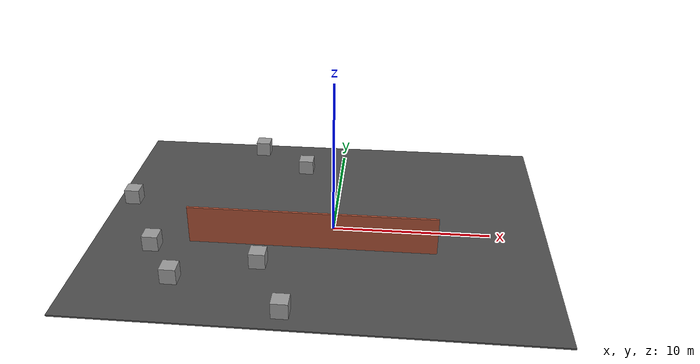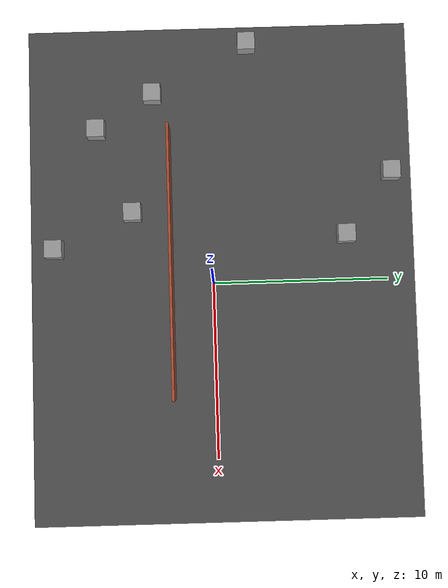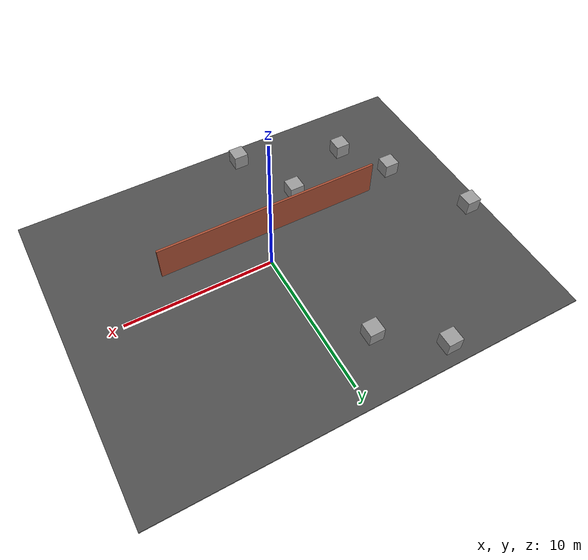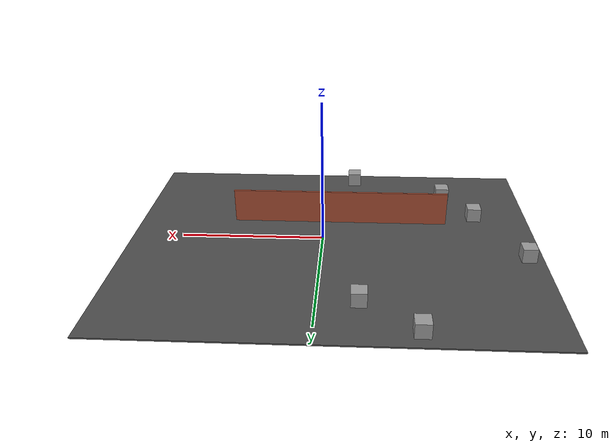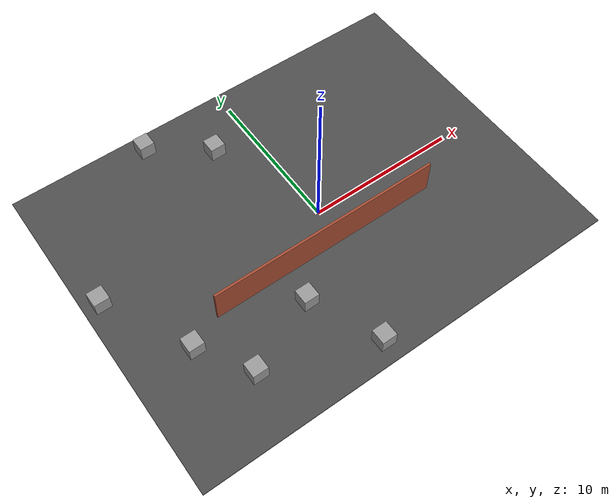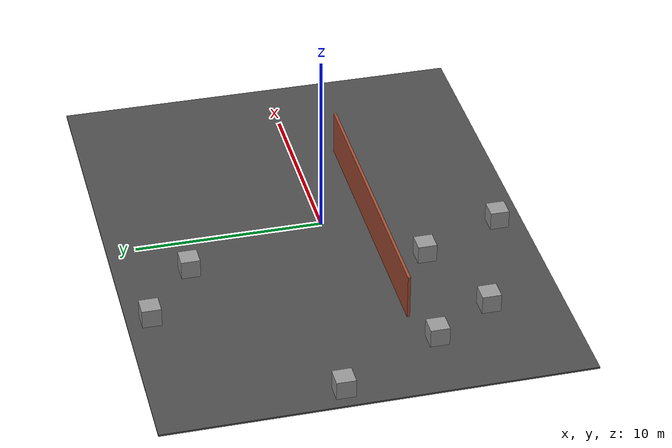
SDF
<sdf version="1.7">
 <world name="default">
  <model name="asphalt_plane">
   <static>1</static>
   <link name="link">
    <collision name="collision"><geometry><box><size>28.54 22.04 0.1</size></box></geometry></collision>
    <visual name="visual">
     <cast_shadows>0</cast_shadows>
     <geometry><box><size>28.54 22.04 0.1</size></box></geometry>
     <material>
      <script>
       <uri>model://asphalt_plane/materials/scripts</uri>
       <uri>model://asphalt_plane/materials/textures</uri>
       <name>vrc/asphalt</name>
      </script>
     </material>
    </visual>
   </link>
   <pose>-0.719505 0.551979 0 0 -0 0</pose>
  </model>
  <model name="unit_box_clone">
   <pose>-9.02992 -6.55581 0.55 0 -0 5.5e-05</pose>
   <link name="link">
    <inertial>
     <mass>1</mass>
     <inertia>
      <ixx>0.166667</ixx>
      <ixy>0</ixy>
      <ixz>0</ixz>
      <iyy>0.166667</iyy>
      <iyz>0</iyz>
      <izz>0.166667</izz>
     </inertia>
    </inertial>
    <collision name="collision"><geometry><box><size>1 1 1</size></box></geometry></collision>
    <visual name="visual">
     <geometry><box><size>1 1 1</size></box></geometry>
     <material>
      <script><name>Gazebo/Grey</name><uri>file://media/materials/scripts/gazebo.material</uri></script>
     </material>
    </visual>
   </link>
  </model>
  <model name="unit_box_clone_0">
   <pose>-2.13904 -9.0825 0.55 0 -0 3.8e-05</pose>
   <link name="link">
    <inertial>
     <mass>1</mass>
     <inertia>
      <ixx>0.166667</ixx>
      <ixy>0</ixy>
      <ixz>0</ixz>
      <iyy>0.166667</iyy>
      <iyz>0</iyz>
      <izz>0.166667</izz>
     </inertia>
    </inertial>
    <collision name="collision"><geometry><box><size>1 1 1</size></box></geometry></collision>
    <visual name="visual">
     <geometry><box><size>1 1 1</size></box></geometry>
     <material>
      <script><name>Gazebo/Grey</name><uri>file://media/materials/scripts/gazebo.material</uri></script>
     </material>
    </visual>
   </link>
  </model>
  <model name="unit_box_clone_11">
   <pose>-2.6168 7.65174 0.549995 1e-05 0 5.6e-05</pose>
   <link name="link">
    <inertial>
     <mass>1</mass>
     <inertia>
      <ixx>0.166667</ixx>
      <ixy>0</ixy>
      <ixz>0</ixz>
      <iyy>0.166667</iyy>
      <iyz>0</iyz>
      <izz>0.166667</izz>
     </inertia>
    </inertial>
    <collision name="collision"><geometry><box><size>1 1 1</size></box></geometry></collision>
    <visual name="visual">
     <geometry><box><size>1 1 1</size></box></geometry>
     <material>
      <script><name>Gazebo/Grey</name><uri>file://media/materials/scripts/gazebo.material</uri></script>
     </material>
    </visual>
   </link>
  </model>
  <model name="unit_box_clone_12">
   <pose>-6.20184 10.3429 0.549995 1e-05 -0 5.4e-05</pose>
   <link name="link">
    <inertial>
     <mass>1</mass>
     <inertia>
      <ixx>0.166667</ixx>
      <ixy>0</ixy>
      <ixz>0</ixz>
      <iyy>0.166667</iyy>
      <iyz>0</iyz>
      <izz>0.166667</izz>
     </inertia>
    </inertial>
    <collision name="collision"><geometry><box><size>1 1 1</size></box></geometry></collision>
    <visual name="visual">
     <geometry><box><size>1 1 1</size></box></geometry>
     <material>
      <script><name>Gazebo/Grey</name><uri>file://media/materials/scripts/gazebo.material</uri></script>
     </material>
    </visual>
   </link>
  </model>
  <model name="unit_box_clone_14">
   <pose>-13.9085 2.23417 0.549995 1e-05 -0 4.2e-05</pose>
   <link name="link">
    <inertial>
     <mass>1</mass>
     <inertia>
      <ixx>0.166667</ixx>
      <ixy>0</ixy>
      <ixz>0</ixz>
      <iyy>0.166667</iyy>
      <iyz>0</iyz>
      <izz>0.166667</izz>
     </inertia>
    </inertial>
    <collision name="collision"><geometry><box><size>1 1 1</size></box></geometry></collision>
    <visual name="visual">
     <geometry><box><size>1 1 1</size></box></geometry>
     <material>
      <script><name>Gazebo/Grey</name><uri>file://media/materials/scripts/gazebo.material</uri></script>
     </material>
    </visual>
   </link>
  </model>
  <model name="unit_box_clone_16">
   <pose>-11.0431 -3.28248 0.549995 1e-05 -0 4.7e-05</pose>
   <link name="link">
    <inertial>
     <mass>1</mass>
     <inertia>
      <ixx>0.166667</ixx>
      <ixy>0</ixy>
      <ixz>0</ixz>
      <iyy>0.166667</iyy>
      <iyz>0</iyz>
      <izz>0.166667</izz>
     </inertia>
    </inertial>
    <collision name="collision"><geometry><box><size>1 1 1</size></box></geometry></collision>
    <visual name="visual">
     <geometry><box><size>1 1 1</size></box></geometry>
     <material>
      <script><name>Gazebo/Grey</name><uri>file://media/materials/scripts/gazebo.material</uri></script>
     </material>
    </visual>
   </link>
  </model>
  <model name="unit_box_clone_clone">
   <pose>-4.15816 -4.55217 0.549995 1e-05 -0 5.8e-05</pose>
   <link name="link">
    <inertial>
     <mass>1</mass>
     <inertia>
      <ixx>0.166667</ixx>
      <ixy>0</ixy>
      <ixz>0</ixz>
      <iyy>0.166667</iyy>
      <iyz>0</iyz>
      <izz>0.166667</izz>
     </inertia>
    </inertial>
    <collision name="collision"><geometry><box><size>1 1 1</size></box></geometry></collision>
    <visual name="visual">
     <geometry><box><size>1 1 1</size></box></geometry>
     <material>
      <script><name>Gazebo/Grey</name><uri>file://media/materials/scripts/gazebo.material</uri></script>
     </material>
    </visual>
   </link>
  </model>
  <model name="Untitled">
   <pose>-1.155 -1.2225 0 0 -0 0</pose>
   <link name="Wall_0">
    <collision name="Wall_0_Collision">
     <geometry><box><size>15.5 0.15 2.5</size></box></geometry>
     <pose>0 0 1.25 0 -0 0</pose>
    </collision>
    <visual name="Wall_0_Visual">
     <pose>0 0 1.25 0 -0 0</pose>
     <geometry><box><size>15.5 0.15 2.5</size></box></geometry>
     <material>
      <script><uri>file://media/materials/scripts/gazebo.material</uri><name>Gazebo/Bricks</name></script>
      <ambient>1 1 1 1</ambient>
     </material>
     <meta><layer>0</layer></meta>
    </visual>
    <pose>-0 -1.1475 0 0 -0 0</pose>
   </link>
   <static>1</static>
  </model>
 </world>
</sdf>
